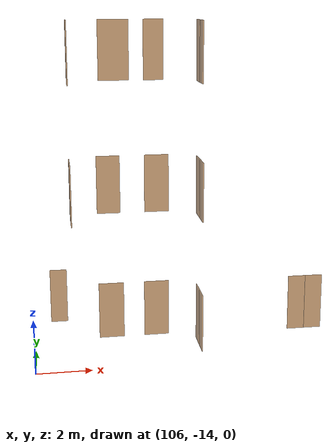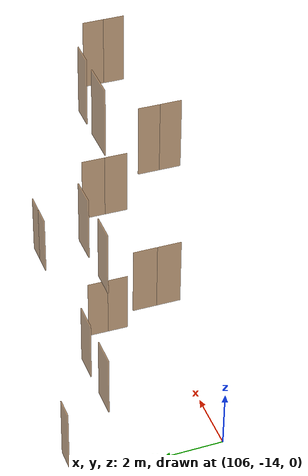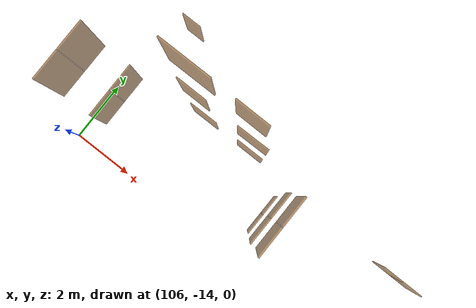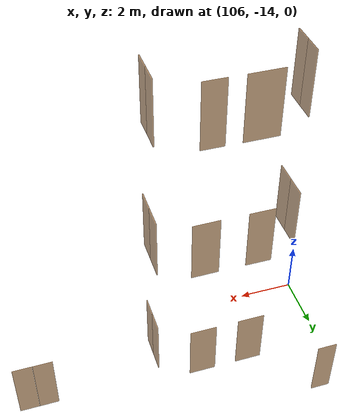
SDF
<sdf version="1.7">
 <world name="sim_world">
  <model name="p105">
   <pose>106.91548768925372 -9.105352434001961 0.0 0 0 3.141592653589793</pose>
   <link name="right">
    <pose>0 0 1.11 0 0 0</pose>
    <visual name="right_visual">
     <geometry><box><size>0.6696909721193316 0.03 2.2</size></box></geometry>
     <material>
      <ambient>0.5 0.25 0 0.6</ambient>
      <diffuse>0.5 0.25 0 0.6</diffuse>
      <pbr><metal><metalness>0.0</metalness></metal></pbr>
     </material>
    </visual>
    <collision name="right_collision">
     <geometry><box><size>0.6696909721193316 0.03 2.2</size></box></geometry>
     <surface><contact><collide_bitmask>0x02</collide_bitmask></contact></surface>
    </collision>
    <inertial>
     <mass>50.0</mass>
     <inertia><ixx>20.17041666666667</ixx><iyy>22.03535832557557</iyy><izz>1.8724416589088977</izz></inertia>
    </inertial>
   </link>
   <joint name="right_joint" type="revolute">
    <parent>world</parent>
    <child>right</child>
    <axis><xyz>0 0 1</xyz><limit><lower>0</lower><upper>1.57</upper></limit></axis>
    <pose>0.3398454860596658 0 0 0 0 0</pose>
   </joint>
   <plugin name="register_component" filename="libregister_component.so">
    <component name="Door">
     <v_max_door>0.5</v_max_door>
     <a_max_door>0.3</a_max_door>
     <a_nom_door>0.15</a_nom_door>
     <dx_min_door>0.01</dx_min_door>
     <f_max_door>500.0</f_max_door>
     <ros_interface>true</ros_interface>
     <door name="p105" type="SwingDoor" left_joint_name="empty_joint" right_joint_name="right_joint"/>
    </component>
   </plugin>
  </model>
  <model name="p113">
   <pose>108.92467260229333 -11.055527984356026 0.0 0 0 -3.135715614528717</pose>
   <link name="right">
    <pose>0 0 1.11 0 0 0</pose>
    <visual name="right_visual">
     <geometry><box><size>0.9617435454140686 0.03 2.2</size></box></geometry>
     <material>
      <ambient>0.5 0.25 0 0.6</ambient>
      <diffuse>0.5 0.25 0 0.6</diffuse>
      <pbr><metal><metalness>0.0</metalness></metal></pbr>
     </material>
    </visual>
    <collision name="right_collision">
     <geometry><box><size>0.9617435454140686 0.03 2.2</size></box></geometry>
     <surface><contact><collide_bitmask>0x02</collide_bitmask></contact></surface>
    </collision>
    <inertial>
     <mass>50.0</mass>
     <inertia><ixx>20.17041666666667</ixx><iyy>24.020627696440098</iyy><izz>3.857711029773428</izz></inertia>
    </inertial>
   </link>
   <joint name="right_joint" type="revolute">
    <parent>world</parent>
    <child>right</child>
    <axis><xyz>0 0 1</xyz><limit><lower>0</lower><upper>1.57</upper></limit></axis>
    <pose>0.4858717727070343 0 0 0 0 0</pose>
   </joint>
   <plugin name="register_component" filename="libregister_component.so">
    <component name="Door">
     <v_max_door>0.5</v_max_door>
     <a_max_door>0.3</a_max_door>
     <a_nom_door>0.15</a_nom_door>
     <dx_min_door>0.01</dx_min_door>
     <f_max_door>500.0</f_max_door>
     <ros_interface>true</ros_interface>
     <door name="p113" type="SwingDoor" left_joint_name="empty_joint" right_joint_name="right_joint"/>
    </component>
   </plugin>
  </model>
  <model name="p114">
   <pose>110.68223163758118 -11.052572516369892 0.0 0 0 0.00020820801994164863</pose>
   <link name="right">
    <pose>0 0 1.11 0 0 0</pose>
    <visual name="right_visual">
     <geometry><box><size>0.9505493378774709 0.03 2.2</size></box></geometry>
     <material>
      <ambient>0.5 0.25 0 0.6</ambient>
      <diffuse>0.5 0.25 0 0.6</diffuse>
      <pbr><metal><metalness>0.0</metalness></metal></pbr>
     </material>
    </visual>
    <collision name="right_collision">
     <geometry><box><size>0.9505493378774709 0.03 2.2</size></box></geometry>
     <surface><contact><collide_bitmask>0x02</collide_bitmask></contact></surface>
    </collision>
    <inertial>
     <mass>50.0</mass>
     <inertia><ixx>20.17041666666667</ixx><iyy>23.931433515580416</iyy><izz>3.7685168489137433</izz></inertia>
    </inertial>
   </link>
   <joint name="right_joint" type="revolute">
    <parent>world</parent>
    <child>right</child>
    <axis><xyz>0 0 -1</xyz><limit><lower>0</lower><upper>1.57</upper></limit></axis>
    <pose>0.48027466893873544 0 0 0 0 0</pose>
   </joint>
   <plugin name="register_component" filename="libregister_component.so">
    <component name="Door">
     <v_max_door>0.5</v_max_door>
     <a_max_door>0.3</a_max_door>
     <a_nom_door>0.15</a_nom_door>
     <dx_min_door>0.01</dx_min_door>
     <f_max_door>500.0</f_max_door>
     <ros_interface>true</ros_interface>
     <door name="p114" type="SwingDoor" left_joint_name="empty_joint" right_joint_name="right_joint"/>
    </component>
   </plugin>
  </model>
  <model name="p115">
   <pose>112.16390995822354 -12.316668395010527 0.0 0 0 1.5671157137248986</pose>
   <link name="right">
    <pose>0.34866425315892285 0 1.11 0 0 0</pose>
    <visual name="right_visual">
     <geometry><box><size>0.6873285063178457 0.03 2.2</size></box></geometry>
     <material>
      <ambient>0.5 0.25 0 0.6</ambient>
      <diffuse>0.5 0.25 0 0.6</diffuse>
      <pbr><metal><metalness>0.0</metalness></metal></pbr>
     </material>
    </visual>
    <collision name="right_collision">
     <geometry><box><size>0.6873285063178457 0.03 2.2</size></box></geometry>
     <surface><contact><collide_bitmask>0x02</collide_bitmask></contact></surface>
    </collision>
    <inertial>
     <mass>50.0</mass>
     <inertia><ixx>20.17041666666667</ixx><iyy>22.13508531498801</iyy><izz>1.9721686483213372</izz></inertia>
    </inertial>
   </link>
   <joint name="right_joint" type="revolute">
    <parent>world</parent>
    <child>right</child>
    <axis><xyz>0 0 -1</xyz><limit><lower>0</lower><upper>1.57</upper></limit></axis>
    <pose>0.34866425315892285 0 0 0 0 0</pose>
   </joint>
   <link name="left">
    <pose>-0.34866425315892285 0 1.11 0 0 0</pose>
    <visual name="left_visual">
     <geometry><box><size>0.6873285063178457 0.03 2.2</size></box></geometry>
     <material>
      <ambient>0.5 0.25 0 0.6</ambient>
      <diffuse>0.5 0.25 0 0.6</diffuse>
      <pbr><metal><metalness>0.0</metalness></metal></pbr>
     </material>
    </visual>
    <collision name="left_collision">
     <geometry><box><size>0.6873285063178457 0.03 2.2</size></box></geometry>
     <surface><contact><collide_bitmask>0x02</collide_bitmask></contact></surface>
    </collision>
    <inertial>
     <mass>50.0</mass>
     <inertia><ixx>20.17041666666667</ixx><iyy>22.13508531498801</iyy><izz>1.9721686483213372</izz></inertia>
    </inertial>
   </link>
   <joint name="left_joint" type="revolute">
    <parent>world</parent>
    <child>left</child>
    <axis><xyz>0 0 -1</xyz><limit><lower>-1.57</lower><upper>0</upper></limit></axis>
    <pose>-0.34866425315892285 0 0 0 0 0</pose>
   </joint>
   <plugin name="register_component" filename="libregister_component.so">
    <component name="Door">
     <v_max_door>0.5</v_max_door>
     <a_max_door>0.3</a_max_door>
     <a_nom_door>0.15</a_nom_door>
     <dx_min_door>0.01</dx_min_door>
     <f_max_door>500.0</f_max_door>
     <ros_interface>true</ros_interface>
     <door name="p115" type="DoubleSwingDoor" left_joint_name="left_joint" right_joint_name="right_joint"/>
    </component>
   </plugin>
  </model>
  <model name="p116">
   <pose>116.60507836804844 -11.302109567123944 0.0 0 0 3.139780533772856</pose>
   <link name="right">
    <pose>0.3433570568950051 0 1.11 0 0 0</pose>
    <visual name="right_visual">
     <geometry><box><size>0.6767141137900102 0.03 2.2</size></box></geometry>
     <material>
      <ambient>0.5 0.25 0 0.6</ambient>
      <diffuse>0.5 0.25 0 0.6</diffuse>
      <pbr><metal><metalness>0.0</metalness></metal></pbr>
     </material>
    </visual>
    <collision name="right_collision">
     <geometry><box><size>0.6767141137900102 0.03 2.2</size></box></geometry>
     <surface><contact><collide_bitmask>0x02</collide_bitmask></contact></surface>
    </collision>
    <inertial>
     <mass>50.0</mass>
     <inertia><ixx>20.17041666666667</ixx><iyy>22.0747582991775</iyy><izz>1.911841632510829</izz></inertia>
    </inertial>
   </link>
   <joint name="right_joint" type="revolute">
    <parent>world</parent>
    <child>right</child>
    <axis><xyz>0 0 -1</xyz><limit><lower>0</lower><upper>1.57</upper></limit></axis>
    <pose>0.3433570568950051 0 0 0 0 0</pose>
   </joint>
   <link name="left">
    <pose>-0.3433570568950051 0 1.11 0 0 0</pose>
    <visual name="left_visual">
     <geometry><box><size>0.6767141137900102 0.03 2.2</size></box></geometry>
     <material>
      <ambient>0.5 0.25 0 0.6</ambient>
      <diffuse>0.5 0.25 0 0.6</diffuse>
      <pbr><metal><metalness>0.0</metalness></metal></pbr>
     </material>
    </visual>
    <collision name="left_collision">
     <geometry><box><size>0.6767141137900102 0.03 2.2</size></box></geometry>
     <surface><contact><collide_bitmask>0x02</collide_bitmask></contact></surface>
    </collision>
    <inertial>
     <mass>50.0</mass>
     <inertia><ixx>20.17041666666667</ixx><iyy>22.0747582991775</iyy><izz>1.911841632510829</izz></inertia>
    </inertial>
   </link>
   <joint name="left_joint" type="revolute">
    <parent>world</parent>
    <child>left</child>
    <axis><xyz>0 0 -1</xyz><limit><lower>-1.57</lower><upper>0</upper></limit></axis>
    <pose>-0.3433570568950051 0 0 0 0 0</pose>
   </joint>
   <plugin name="register_component" filename="libregister_component.so">
    <component name="Door">
     <v_max_door>0.5</v_max_door>
     <a_max_door>0.3</a_max_door>
     <a_nom_door>0.15</a_nom_door>
     <dx_min_door>0.01</dx_min_door>
     <f_max_door>500.0</f_max_door>
     <ros_interface>true</ros_interface>
     <door name="p116" type="DoubleSwingDoor" left_joint_name="left_joint" right_joint_name="right_joint"/>
    </component>
   </plugin>
  </model>
  <model name="puerta88">
   <pose>107.43240964770877 -12.237164899867551 5.0 0 0 -1.569390246855637</pose>
   <link name="right">
    <pose>0.3769050018225485 0 1.11 0 0 0</pose>
    <visual name="right_visual">
     <geometry><box><size>0.743810003645097 0.03 2.2</size></box></geometry>
     <material>
      <ambient>0.5 0.25 0 0.6</ambient>
      <diffuse>0.5 0.25 0 0.6</diffuse>
      <pbr><metal><metalness>0.0</metalness></metal></pbr>
     </material>
    </visual>
    <collision name="right_collision">
     <geometry><box><size>0.743810003645097 0.03 2.2</size></box></geometry>
     <surface><contact><collide_bitmask>0x02</collide_bitmask></contact></surface>
    </collision>
    <inertial>
     <mass>50.0</mass>
     <inertia><ixx>20.17041666666667</ixx><iyy>22.47188883967717</iyy><izz>2.308972173010497</izz></inertia>
    </inertial>
   </link>
   <joint name="right_joint" type="revolute">
    <parent>world</parent>
    <child>right</child>
    <axis><xyz>0 0 -1</xyz><limit><lower>0</lower><upper>1.57</upper></limit></axis>
    <pose>0.3769050018225485 0 0 0 0 0</pose>
   </joint>
   <link name="left">
    <pose>-0.3769050018225485 0 1.11 0 0 0</pose>
    <visual name="left_visual">
     <geometry><box><size>0.743810003645097 0.03 2.2</size></box></geometry>
     <material>
      <ambient>0.5 0.25 0 0.6</ambient>
      <diffuse>0.5 0.25 0 0.6</diffuse>
      <pbr><metal><metalness>0.0</metalness></metal></pbr>
     </material>
    </visual>
    <collision name="left_collision">
     <geometry><box><size>0.743810003645097 0.03 2.2</size></box></geometry>
     <surface><contact><collide_bitmask>0x02</collide_bitmask></contact></surface>
    </collision>
    <inertial>
     <mass>50.0</mass>
     <inertia><ixx>20.17041666666667</ixx><iyy>22.47188883967717</iyy><izz>2.308972173010497</izz></inertia>
    </inertial>
   </link>
   <joint name="left_joint" type="revolute">
    <parent>world</parent>
    <child>left</child>
    <axis><xyz>0 0 -1</xyz><limit><lower>-1.57</lower><upper>0</upper></limit></axis>
    <pose>-0.3769050018225485 0 0 0 0 0</pose>
   </joint>
   <plugin name="register_component" filename="libregister_component.so">
    <component name="Door">
     <v_max_door>0.5</v_max_door>
     <a_max_door>0.3</a_max_door>
     <a_nom_door>0.15</a_nom_door>
     <dx_min_door>0.01</dx_min_door>
     <f_max_door>500.0</f_max_door>
     <ros_interface>true</ros_interface>
     <door name="puerta88" type="DoubleSwingDoor" left_joint_name="left_joint" right_joint_name="right_joint"/>
    </component>
   </plugin>
  </model>
  <model name="puerta89">
   <pose>112.1738556876187 -12.242295327423472 5.0 0 0 1.5645194594097704</pose>
   <link name="right">
    <pose>0.37675136673508536 0 1.11 0 0 0</pose>
    <visual name="right_visual">
     <geometry><box><size>0.7435027334701707 0.03 2.2</size></box></geometry>
     <material>
      <ambient>0.5 0.25 0 0.6</ambient>
      <diffuse>0.5 0.25 0 0.6</diffuse>
      <pbr><metal><metalness>0.0</metalness></metal></pbr>
     </material>
    </visual>
    <collision name="right_collision">
     <geometry><box><size>0.7435027334701707 0.03 2.2</size></box></geometry>
     <surface><contact><collide_bitmask>0x02</collide_bitmask></contact></surface>
    </collision>
    <inertial>
     <mass>50.0</mass>
     <inertia><ixx>20.17041666666667</ixx><iyy>22.46998464449007</iyy><izz>2.307067977823399</izz></inertia>
    </inertial>
   </link>
   <joint name="right_joint" type="revolute">
    <parent>world</parent>
    <child>right</child>
    <axis><xyz>0 0 -1</xyz><limit><lower>0</lower><upper>1.57</upper></limit></axis>
    <pose>0.37675136673508536 0 0 0 0 0</pose>
   </joint>
   <link name="left">
    <pose>-0.37675136673508536 0 1.11 0 0 0</pose>
    <visual name="left_visual">
     <geometry><box><size>0.7435027334701707 0.03 2.2</size></box></geometry>
     <material>
      <ambient>0.5 0.25 0 0.6</ambient>
      <diffuse>0.5 0.25 0 0.6</diffuse>
      <pbr><metal><metalness>0.0</metalness></metal></pbr>
     </material>
    </visual>
    <collision name="left_collision">
     <geometry><box><size>0.7435027334701707 0.03 2.2</size></box></geometry>
     <surface><contact><collide_bitmask>0x02</collide_bitmask></contact></surface>
    </collision>
    <inertial>
     <mass>50.0</mass>
     <inertia><ixx>20.17041666666667</ixx><iyy>22.46998464449007</iyy><izz>2.307067977823399</izz></inertia>
    </inertial>
   </link>
   <joint name="left_joint" type="revolute">
    <parent>world</parent>
    <child>left</child>
    <axis><xyz>0 0 -1</xyz><limit><lower>-1.57</lower><upper>0</upper></limit></axis>
    <pose>-0.37675136673508536 0 0 0 0 0</pose>
   </joint>
   <plugin name="register_component" filename="libregister_component.so">
    <component name="Door">
     <v_max_door>0.5</v_max_door>
     <a_max_door>0.3</a_max_door>
     <a_nom_door>0.15</a_nom_door>
     <dx_min_door>0.01</dx_min_door>
     <f_max_door>500.0</f_max_door>
     <ros_interface>true</ros_interface>
     <door name="puerta89" type="DoubleSwingDoor" left_joint_name="left_joint" right_joint_name="right_joint"/>
    </component>
   </plugin>
  </model>
  <model name="puerta90">
   <pose>108.8807187240226 -11.05085683685475 5.0 0 0 3.1392179370158737</pose>
   <link name="right">
    <pose>0 0 1.11 0 0 0</pose>
    <visual name="right_visual">
     <geometry><box><size>0.8780035699901496 0.03 2.2</size></box></geometry>
     <material>
      <ambient>0.5 0.25 0 0.6</ambient>
      <diffuse>0.5 0.25 0 0.6</diffuse>
      <pbr><metal><metalness>0.0</metalness></metal></pbr>
     </material>
    </visual>
    <collision name="right_collision">
     <geometry><box><size>0.8780035699901496 0.03 2.2</size></box></geometry>
     <surface><contact><collide_bitmask>0x02</collide_bitmask></contact></surface>
    </collision>
    <inertial>
     <mass>50.0</mass>
     <inertia><ixx>20.17041666666667</ixx><iyy>23.37870945381437</iyy><izz>3.2157927871476986</izz></inertia>
    </inertial>
   </link>
   <joint name="right_joint" type="revolute">
    <parent>world</parent>
    <child>right</child>
    <axis><xyz>0 0 1</xyz><limit><lower>0</lower><upper>1.57</upper></limit></axis>
    <pose>0.4440017849950748 0 0 0 0 0</pose>
   </joint>
   <plugin name="register_component" filename="libregister_component.so">
    <component name="Door">
     <v_max_door>0.5</v_max_door>
     <a_max_door>0.3</a_max_door>
     <a_nom_door>0.15</a_nom_door>
     <dx_min_door>0.01</dx_min_door>
     <f_max_door>500.0</f_max_door>
     <ros_interface>true</ros_interface>
     <door name="puerta90" type="SwingDoor" left_joint_name="empty_joint" right_joint_name="right_joint"/>
    </component>
   </plugin>
  </model>
  <model name="puerta91">
   <pose>110.70935901686636 -11.051899303424976 5.0 0 0 0.010633107460433545</pose>
   <link name="right">
    <pose>0 0 1.11 0 0 0</pose>
    <visual name="right_visual">
     <geometry><box><size>0.9231009654454994 0.03 2.2</size></box></geometry>
     <material>
      <ambient>0.5 0.25 0 0.6</ambient>
      <diffuse>0.5 0.25 0 0.6</diffuse>
      <pbr><metal><metalness>0.0</metalness></metal></pbr>
     </material>
    </visual>
    <collision name="right_collision">
     <geometry><box><size>0.9231009654454994 0.03 2.2</size></box></geometry>
     <surface><contact><collide_bitmask>0x02</collide_bitmask></contact></surface>
    </collision>
    <inertial>
     <mass>50.0</mass>
     <inertia><ixx>20.17041666666667</ixx><iyy>23.717147468360057</iyy><izz>3.5542308016933877</izz></inertia>
    </inertial>
   </link>
   <joint name="right_joint" type="revolute">
    <parent>world</parent>
    <child>right</child>
    <axis><xyz>0 0 -1</xyz><limit><lower>0</lower><upper>1.57</upper></limit></axis>
    <pose>0.4665504827227497 0 0 0 0 0</pose>
   </joint>
   <plugin name="register_component" filename="libregister_component.so">
    <component name="Door">
     <v_max_door>0.5</v_max_door>
     <a_max_door>0.3</a_max_door>
     <a_nom_door>0.15</a_nom_door>
     <dx_min_door>0.01</dx_min_door>
     <f_max_door>500.0</f_max_door>
     <ros_interface>true</ros_interface>
     <door name="puerta91" type="SwingDoor" left_joint_name="empty_joint" right_joint_name="right_joint"/>
    </component>
   </plugin>
  </model>
  <model name="puerta162">
   <pose>107.43718048809481 -12.251049815167539 10.0 0 0 -1.5748152147398222</pose>
   <link name="right">
    <pose>0.3168384389801367 0 1.11 0 0 0</pose>
    <visual name="right_visual">
     <geometry><box><size>0.6236768779602734 0.03 2.2</size></box></geometry>
     <material>
      <ambient>0.5 0.25 0 0.6</ambient>
      <diffuse>0.5 0.25 0 0.6</diffuse>
      <pbr><metal><metalness>0.0</metalness></metal></pbr>
     </material>
    </visual>
    <collision name="right_collision">
     <geometry><box><size>0.6236768779602734 0.03 2.2</size></box></geometry>
     <surface><contact><collide_bitmask>0x02</collide_bitmask></contact></surface>
    </collision>
    <inertial>
     <mass>50.0</mass>
     <inertia><ixx>20.17041666666667</ixx><iyy>21.78738686709281</iyy><izz>1.6244702004261407</izz></inertia>
    </inertial>
   </link>
   <joint name="right_joint" type="revolute">
    <parent>world</parent>
    <child>right</child>
    <axis><xyz>0 0 -1</xyz><limit><lower>0</lower><upper>1.57</upper></limit></axis>
    <pose>0.3168384389801367 0 0 0 0 0</pose>
   </joint>
   <link name="left">
    <pose>-0.3168384389801367 0 1.11 0 0 0</pose>
    <visual name="left_visual">
     <geometry><box><size>0.6236768779602734 0.03 2.2</size></box></geometry>
     <material>
      <ambient>0.5 0.25 0 0.6</ambient>
      <diffuse>0.5 0.25 0 0.6</diffuse>
      <pbr><metal><metalness>0.0</metalness></metal></pbr>
     </material>
    </visual>
    <collision name="left_collision">
     <geometry><box><size>0.6236768779602734 0.03 2.2</size></box></geometry>
     <surface><contact><collide_bitmask>0x02</collide_bitmask></contact></surface>
    </collision>
    <inertial>
     <mass>50.0</mass>
     <inertia><ixx>20.17041666666667</ixx><iyy>21.78738686709281</iyy><izz>1.6244702004261407</izz></inertia>
    </inertial>
   </link>
   <joint name="left_joint" type="revolute">
    <parent>world</parent>
    <child>left</child>
    <axis><xyz>0 0 -1</xyz><limit><lower>-1.57</lower><upper>0</upper></limit></axis>
    <pose>-0.3168384389801367 0 0 0 0 0</pose>
   </joint>
   <plugin name="register_component" filename="libregister_component.so">
    <component name="Door">
     <v_max_door>0.5</v_max_door>
     <a_max_door>0.3</a_max_door>
     <a_nom_door>0.15</a_nom_door>
     <dx_min_door>0.01</dx_min_door>
     <f_max_door>500.0</f_max_door>
     <ros_interface>true</ros_interface>
     <door name="puerta162" type="DoubleSwingDoor" left_joint_name="left_joint" right_joint_name="right_joint"/>
    </component>
   </plugin>
  </model>
  <model name="puerta163">
   <pose>112.16237605333869 -12.229916203219695 10.0 0 0 1.5709510958725896</pose>
   <link name="right">
    <pose>0.3188470170256608 0 1.11 0 0 0</pose>
    <visual name="right_visual">
     <geometry><box><size>0.6276940340513216 0.03 2.2</size></box></geometry>
     <material>
      <ambient>0.5 0.25 0 0.6</ambient>
      <diffuse>0.5 0.25 0 0.6</diffuse>
      <pbr><metal><metalness>0.0</metalness></metal></pbr>
     </material>
    </visual>
    <collision name="right_collision">
     <geometry><box><size>0.6276940340513216 0.03 2.2</size></box></geometry>
     <surface><contact><collide_bitmask>0x02</collide_bitmask></contact></surface>
    </collision>
    <inertial>
     <mass>50.0</mass>
     <inertia><ixx>20.17041666666667</ixx><iyy>21.80833250159843</iyy><izz>1.6454158349317574</izz></inertia>
    </inertial>
   </link>
   <joint name="right_joint" type="revolute">
    <parent>world</parent>
    <child>right</child>
    <axis><xyz>0 0 -1</xyz><limit><lower>0</lower><upper>1.57</upper></limit></axis>
    <pose>0.3188470170256608 0 0 0 0 0</pose>
   </joint>
   <link name="left">
    <pose>-0.3188470170256608 0 1.11 0 0 0</pose>
    <visual name="left_visual">
     <geometry><box><size>0.6276940340513216 0.03 2.2</size></box></geometry>
     <material>
      <ambient>0.5 0.25 0 0.6</ambient>
      <diffuse>0.5 0.25 0 0.6</diffuse>
      <pbr><metal><metalness>0.0</metalness></metal></pbr>
     </material>
    </visual>
    <collision name="left_collision">
     <geometry><box><size>0.6276940340513216 0.03 2.2</size></box></geometry>
     <surface><contact><collide_bitmask>0x02</collide_bitmask></contact></surface>
    </collision>
    <inertial>
     <mass>50.0</mass>
     <inertia><ixx>20.17041666666667</ixx><iyy>21.80833250159843</iyy><izz>1.6454158349317574</izz></inertia>
    </inertial>
   </link>
   <joint name="left_joint" type="revolute">
    <parent>world</parent>
    <child>left</child>
    <axis><xyz>0 0 -1</xyz><limit><lower>-1.57</lower><upper>0</upper></limit></axis>
    <pose>-0.3188470170256608 0 0 0 0 0</pose>
   </joint>
   <plugin name="register_component" filename="libregister_component.so">
    <component name="Door">
     <v_max_door>0.5</v_max_door>
     <a_max_door>0.3</a_max_door>
     <a_nom_door>0.15</a_nom_door>
     <dx_min_door>0.01</dx_min_door>
     <f_max_door>500.0</f_max_door>
     <ros_interface>true</ros_interface>
     <door name="puerta163" type="DoubleSwingDoor" left_joint_name="left_joint" right_joint_name="right_joint"/>
    </component>
   </plugin>
  </model>
  <model name="puerta164">
   <pose>109.15460955267865 -11.045370474335002 10.0 0 0 -3.1376306476457385</pose>
   <link name="right">
    <pose>0 0 1.11 0 0 0</pose>
    <visual name="right_visual">
     <geometry><box><size>1.1283142143352054 0.03 2.2</size></box></geometry>
     <material>
      <ambient>0.5 0.25 0 0.6</ambient>
      <diffuse>0.5 0.25 0 0.6</diffuse>
      <pbr><metal><metalness>0.0</metalness></metal></pbr>
     </material>
    </visual>
    <collision name="right_collision">
     <geometry><box><size>1.1283142143352054 0.03 2.2</size></box></geometry>
     <surface><contact><collide_bitmask>0x02</collide_bitmask></contact></surface>
    </collision>
    <inertial>
     <mass>50.0</mass>
     <inertia><ixx>20.17041666666667</ixx><iyy>25.471220692795306</iyy><izz>5.308304026128633</izz></inertia>
    </inertial>
   </link>
   <joint name="right_joint" type="revolute">
    <parent>world</parent>
    <child>right</child>
    <axis><xyz>0 0 1</xyz><limit><lower>0</lower><upper>1.57</upper></limit></axis>
    <pose>0.5691571071676027 0 0 0 0 0</pose>
   </joint>
   <plugin name="register_component" filename="libregister_component.so">
    <component name="Door">
     <v_max_door>0.5</v_max_door>
     <a_max_door>0.3</a_max_door>
     <a_nom_door>0.15</a_nom_door>
     <dx_min_door>0.01</dx_min_door>
     <f_max_door>500.0</f_max_door>
     <ros_interface>true</ros_interface>
     <door name="puerta164" type="SwingDoor" left_joint_name="empty_joint" right_joint_name="right_joint"/>
    </component>
   </plugin>
  </model>
  <model name="puerta165">
   <pose>110.61888757549102 -11.05828977436134 10.0 0 0 -0.004819430436973389</pose>
   <link name="right">
    <pose>0 0 1.11 0 0 0</pose>
    <visual name="right_visual">
     <geometry><box><size>0.7406271479474712 0.03 2.2</size></box></geometry>
     <material>
      <ambient>0.5 0.25 0 0.6</ambient>
      <diffuse>0.5 0.25 0 0.6</diffuse>
      <pbr><metal><metalness>0.0</metalness></metal></pbr>
     </material>
    </visual>
    <collision name="right_collision">
     <geometry><box><size>0.7406271479474712 0.03 2.2</size></box></geometry>
     <surface><contact><collide_bitmask>0x02</collide_bitmask></contact></surface>
    </collision>
    <inertial>
     <mass>50.0</mass>
     <inertia><ixx>20.17041666666667</ixx><iyy>22.452202384486696</iyy><izz>2.2892857178200225</izz></inertia>
    </inertial>
   </link>
   <joint name="right_joint" type="revolute">
    <parent>world</parent>
    <child>right</child>
    <axis><xyz>0 0 -1</xyz><limit><lower>0</lower><upper>1.57</upper></limit></axis>
    <pose>0.3753135739737356 0 0 0 0 0</pose>
   </joint>
   <plugin name="register_component" filename="libregister_component.so">
    <component name="Door">
     <v_max_door>0.5</v_max_door>
     <a_max_door>0.3</a_max_door>
     <a_nom_door>0.15</a_nom_door>
     <dx_min_door>0.01</dx_min_door>
     <f_max_door>500.0</f_max_door>
     <ros_interface>true</ros_interface>
     <door name="puerta165" type="SwingDoor" left_joint_name="empty_joint" right_joint_name="right_joint"/>
    </component>
   </plugin>
  </model>
 </world>
</sdf>
